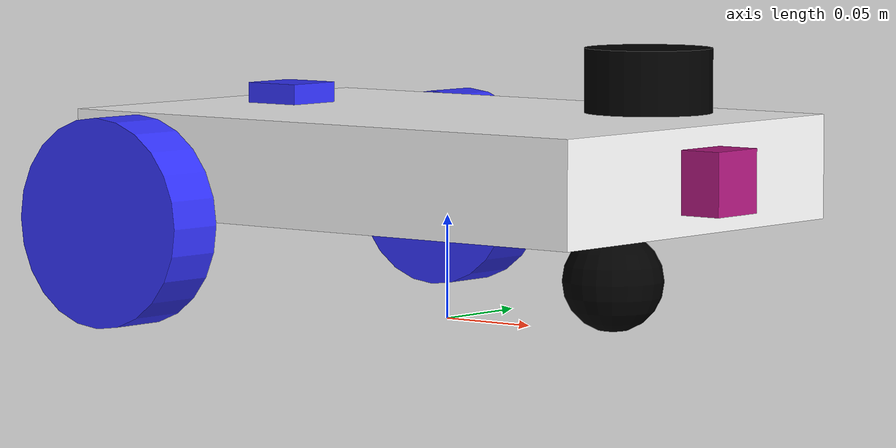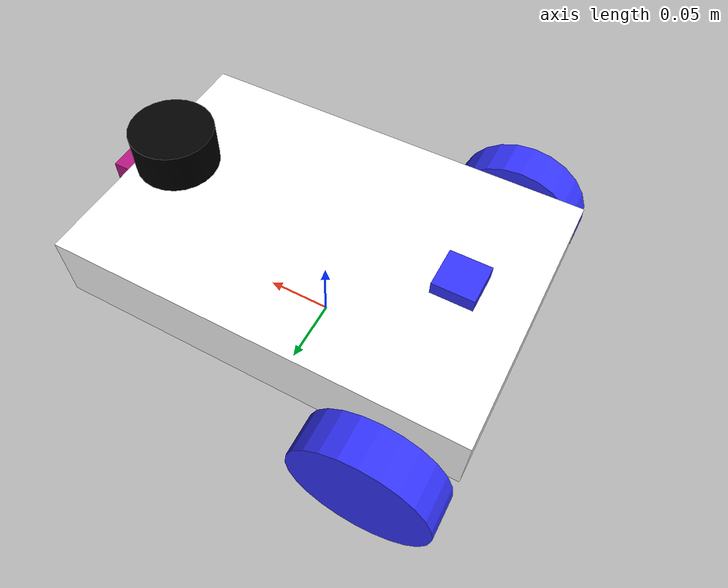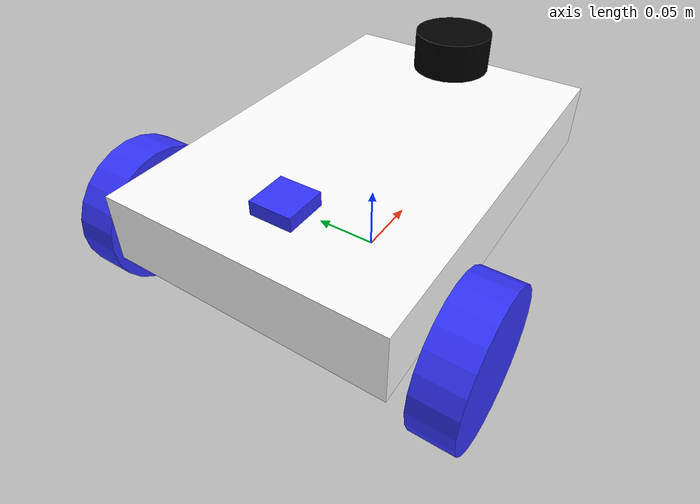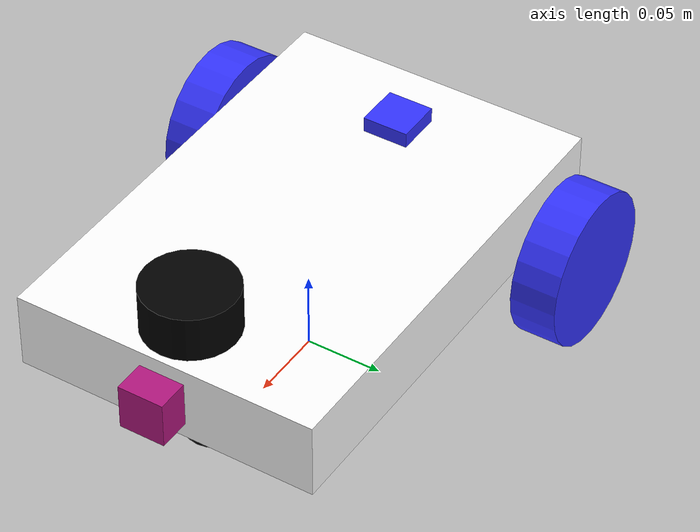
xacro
<?xml version="1.0"?>
<robot xmlns:xacro="http://www.ros.org/wiki/xacro" name="bot">

    <xacro:arg name="use_ros2_control" default="true"/>
    <xacro:arg name="sim_mode" default="true"/>

    <xacro:if value="$(arg use_ros2_control)">
        <xacro:include filename="ros2_control.xacro"/>
    </xacro:if>
    <xacro:unless value="$(arg use_ros2_control)">
        <xacro:include filename="gazebo_control.xacro"/>
    </xacro:unless>
    <xacro:include filename="robot_core.xacro" />
    <xacro:include filename="lidar.xacro"/>
    <xacro:include filename="camera.xacro"/>
    <xacro:include filename="imu.xacro"/>

</robot>

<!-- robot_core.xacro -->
<robot xmlns:xacro="http://www.ros.org/wiki/xacro">

    <material name="white">
        <color rgba="1 1 1 1" />
    </material>

    <material name="red">
        <color rgba="1 0 0 1" />
    </material>

    <material name="orange">
        <color rgba="1 0.3 0.1 1" />
    </material>

    <material name="blue">
        <color rgba="0.2 0.2 1 1" />
    </material>

    <material name="black">
        <color rgba="0 0 0 1" />
    </material>

    <material name="pink">
        <color rgba="0.7 0.09 0.5 1" />
    </material>

    <xacro:property name="box_x" value="0.3"/>
    <xacro:property name="box_y" value="0.2"/>
    <xacro:property name="box_z" value="0.05"/>

    <xacro:property name="wheel_radius" value="0.05"/>
    <xacro:property name="wheel_length" value="0.03"/>

    <xacro:property name="caster_wheel_radius" value="0.025"/>

    <xacro:property name="box_mass" value="0.5"/>
    <xacro:property name="wheel_mass" value="0.1"/>
    <xacro:property name="caster_wheel_mass" value="0.05"/>

    <xacro:property name="lidar_radius" value="0.03"/>
    <xacro:property name="lidar_length" value="0.03"/>

    <link name="base_link">
    </link>

    <link name="base_footprint">
    </link>

    <joint name="base_footprint_joint" type="fixed">
        <parent link="base_link" />
        <child link="base_footprint" />
        <origin xyz="0 0 0" rpy="0 0 0" />

    </joint>

    <link name="chassis">
        <visual>
            <origin xyz="0 0 0"/>
            <geometry>
                <box size="${box_x} ${box_y} ${box_z}"/>
            </geometry>
            <material name="white"/>
        </visual>
        <collision>
            <origin xyz="0 0 0"/>
            <geometry>
                <box size="${box_x-0.001} ${box_y-0.001} ${box_z-0.001}"/>
            </geometry>
        </collision>
        <inertial>
            <origin xyz="0 0 0" rpy="0 0 0" />
            <mass value="${box_mass}" />
            <inertia ixx="${(1/12)*box_mass*(box_y*box_y+box_z*box_z)}" ixy="0" ixz="0" iyy="${(1/12)*box_mass*(box_x*box_x+box_z*box_z)}" iyz="0"
            izz="${(1/12)*box_mass*(box_x*box_x+box_y*box_y)}" />
        </inertial>
    </link>

    <gazebo reference="chassis">
        <visual>
            <material>
                <ambient>1.0 1.0 1.0 1.0</ambient>
                <diffuse>1.0 1.0 1.0 1.0</diffuse>
                <specular>1.0 1.0 1.0 1.0</specular>
            </material>
        </visual>
    </gazebo>

    <joint name="chassis_joint" type="fixed">
        <parent link="base_link"/>
        <child link="chassis"/>
        <origin xyz="0 0 ${wheel_radius+box_z/2}"/>
    </joint>

    <link name="left_wheel">
        <visual>
            <origin xyz="0 0 0" rpy="${pi/2} 0 0"/>
            <geometry>
                <cylinder radius="${wheel_radius}" length="${wheel_length}" />
            </geometry>
            <material name='blue'/>
        </visual>
        <collision>
            <origin xyz="0 0 0" rpy="${pi/2} 0 0"/>
            <geometry>
                <cylinder radius="${wheel_radius}" length="${wheel_length-0.001}" />
            </geometry>
        </collision>
        <inertial>
            <origin xyz="0 0 0" rpy="${pi/2} 0 0" />
            <mass value="${wheel_mass}" />
            <inertia ixx="${(1/12)*wheel_mass*(3*wheel_radius*wheel_radius+wheel_length*wheel_length)}" ixy="0" ixz="0" iyy="${(1/12)*wheel_mass*(3*wheel_radius*wheel_radius+wheel_length*wheel_length)}" iyz="0"
            izz="${(1/2)*wheel_mass*(wheel_radius*wheel_radius)}" />
        </inertial>
    </link>
    <gazebo reference="left_wheel">
    <visual>
        <material>
            <ambient>0.0 0.0 1.0 1.0</ambient>
            <diffuse>0.0 0.0 1.0 1.0</diffuse>
            <specular>0.0 0.0 1.0 1.0</specular>
        </material>
    </visual>
    </gazebo>

    <joint name="left_wheel_joint" type="continuous">
        <parent link="base_link"/>
        <child link="left_wheel"/>
        <origin xyz="${-box_x/2+wheel_radius} ${box_y/2+wheel_length/2+0.01} ${wheel_radius}" rpy="0 0 0"/>
        <axis xyz="0 1 0" />
    </joint>

    <link name="right_wheel">
        <visual>
            <origin xyz="0 0 0" rpy="${pi/2} 0 0"/>
            <geometry>
                <cylinder radius="${wheel_radius}" length="${wheel_length-0.001}" />
            </geometry>
            <material name='blue'/>
        </visual>
        <collision>
            <origin xyz="0 0 0" rpy="${pi/2} 0 0"/>
            <geometry>
                <cylinder radius="${wheel_radius}" length="${wheel_length}" />
            </geometry>
        </collision>
        <inertial>
            <origin xyz="0 0 0" rpy="${pi/2} 0 0" />
            <mass value="${wheel_mass}" />
            <inertia ixx="${(1/12)*wheel_mass*(3*wheel_radius*wheel_radius+wheel_length*wheel_length)}" ixy="0" ixz="0" iyy="${(1/12)*wheel_mass*(3*wheel_radius*wheel_radius+wheel_length*wheel_length)}" iyz="0"
            izz="${(1/2)*wheel_mass*(wheel_radius*wheel_radius)}" />
        </inertial>

    </link>
    <gazebo reference="right_wheel">
    <visual>
        <material>
            <ambient>0.0 0.0 1.0 1.0</ambient>
            <diffuse>0.0 0.0 1.0 1.0</diffuse>
            <specular>0.0 0.0 1.0 1.0</specular>
        </material>
    </visual>
    </gazebo>

    <joint name="right_wheel_joint" type="continuous">
        <parent link="base_link"/>
        <child link="right_wheel"/>
        <origin xyz="${-box_x/2+wheel_radius} ${-box_y/2-wheel_length/2-0.01} ${wheel_radius}" rpy="0 0 0"/>
        <axis xyz="0 1 0" />
    </joint>

    <link name="caster_wheel">
        <visual>
            <geometry>
                <sphere radius="${caster_wheel_radius-0.001}" />
            </geometry>
            <origin xyz="0 0 ${-caster_wheel_radius}" />
            <material name="black"/>
        </visual>
        <collision>
            <geometry>
                <sphere radius="${caster_wheel_radius}" />
            </geometry>
            <origin xyz="0 0 ${-caster_wheel_radius}" />
        </collision>
        <inertial>
            <origin xyz="0 0 ${-caster_wheel_radius}" rpy="0 0 0" />
            <mass value="${caster_wheel_mass}" />
            <inertia ixx="${(2/5)*caster_wheel_mass*(caster_wheel_radius*caster_wheel_radius)}" ixy="0" ixz="0" iyy="${(2/5)*caster_wheel_mass*(caster_wheel_radius*caster_wheel_radius)}" iyz="0"
            izz="${(2/5)*caster_wheel_mass*(caster_wheel_radius*caster_wheel_radius)}" />
        </inertial>
    </link>
    <gazebo reference="caster_wheel">
        <mu1 value="0.001"/>
        <mu2 value="0.001"/>
    </gazebo>

    <joint name="caster_wheel_joint" type="fixed">
        <parent link="base_link"/>
        <child link="caster_wheel"/>
        <origin xyz="${box_x/2-box_x/6} 0 ${wheel_radius}" rpy="0 0 0" />
    </joint>

</robot>

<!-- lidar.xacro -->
<robot xmlns:xacro="http://www.ros.org/wiki/xacro" >

    <joint name="lidar_joint" type="fixed">
        <parent link="chassis"/>
        <child link="laser_frame"/>
        <origin xyz="${box_x/2-lidar_radius} 0 0.045" rpy="0 0 0"/>

    </joint>

    <link name="laser_frame">
        <visual>
            <geometry>
                <cylinder radius="${lidar_radius}" length="${lidar_length}"/>
            </geometry>
            <material name="black"/>
        </visual>
        <collision>
            <geometry>
                <cylinder radius="${lidar_radius}" length="${lidar_length/2}"/>
            </geometry>
        </collision>
        <inertial>
            <mass value="0.1" />
            <origin xyz="0 0 0" rpy="0 0 0"/>
            <inertia ixx="0.0001" ixy="0.0" ixz="0.0"
                     iyy="0.0001" iyz="0.0"
                     izz="0.0001" />
        </inertial>
    </link>
<gazebo reference="laser_frame">
    <sensor name="laser" type="ray"> <!-- Use 'ray' (or 'gpu_ray' if you have drivers set up) -->
        <pose> 0 0 0 0 0 0 </pose>
        <visualize>true</visualize>
        <update_rate>10</update_rate>
        <ray>
            <scan>
                <horizontal>
                    <samples>360</samples>
                    <min_angle>-3.14159</min_angle>
                    <max_angle>3.14159</max_angle>
                </horizontal>
            </scan>
            <range>
                <min>0.12</min>
                <max>12.0</max>
                <resolution>0.01</resolution>
            </range>
        </ray>
        <plugin name="laser_controller" filename="libgazebo_ros_ray_sensor.so">
            <ros>
                <remapping>~/out:=scan</remapping>
            </ros>
            <output_type>sensor_msgs/LaserScan</output_type>
            <frame_name>laser_frame</frame_name>
        </plugin>
    </sensor>
</gazebo>

</robot>

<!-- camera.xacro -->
<robot xmlns:xacro="http://www.ros.org/wiki/xacro" >

    <joint name="camera_joint" type="fixed">
        <parent link="chassis"/>
        <child link="camera_link"/>
        <origin xyz="${box_x/2+lidar_length*0.7/2} 0 0" rpy="0 0 0"/>
    </joint>

    <link name="camera_link">
        <visual>
            <geometry>
                <box size="${lidar_length*0.7} 0.03 0.03"/>
            </geometry>
            <material name="pink"/>
            <origin xyz="0 0 0" rpy="0 0 0"/>
        </visual>
        <collision>
            <geometry>
                <box size="${lidar_length*0.7} 0.03 0.03"/>
            </geometry>
            <material name="pink"/>
            <origin xyz="0 0 0" rpy="0 0 0"/>
        </collision>
        <inertial>
            <mass value="0.1" />
            <origin xyz="0 0 0" rpy="0 0 0"/>
            <inertia ixx="0.0001" ixy="0.0" ixz="0.0"
                     iyy="0.0001" iyz="0.0"
                     izz="0.0001" />
        </inertial>

    </link>

     <joint name="camera_optical_joint" type="fixed">
        <parent link="camera_link"/>
        <child link="camera_link_optical"/>
        <origin xyz="0 0 0" rpy="${-pi/2} 0 ${-pi/2}"/>
    </joint>

    <link name="camera_link_optical">
    </link>

<gazebo reference="camera_link">
    <sensor name="camera" type="camera">
        <pose> 0 0 0 0 0 0 </pose>
        <visualize>true</visualize>
        <update_rate>10</update_rate>
        <camera>
            <horizontal_fov>1.089</horizontal_fov>
            <image>
                <format>R8G8B8</format>
                <width>640</width>
                <height>480</height>
            </image>
            <clip>
                <near>0.05</near>
                <far>8.0</far>
            </clip>
        </camera>
        <plugin name="camera_controller" filename="libgazebo_ros_camera.so">
            <ros>
                <namespace>/</namespace>
                <!-- These remap the internal Gazebo names to standard ROS topics -->
                <remapping>image_raw:=image_raw</remapping>
                <remapping>camera_info:=camera_info</remapping>
            </ros>
            <frame_name>camera_link_optical</frame_name>
        </plugin>
    </sensor>
</gazebo>

</robot>

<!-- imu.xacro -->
<robot xmlns:xacro="http://www.ros.org/wiki/xacro" >

    <xacro:property name="imu_x" value="0.03"/>
    <xacro:property name="imu_y" value="0.03"/>
    <xacro:property name="imu_z" value="0.01"/>

    <joint name="imu_joint" type="fixed">
        <parent link="chassis"/>
        <child link="imu_link"/>
        <origin xyz="${-box_x/2+wheel_radius} 0 ${box_z/2 + imu_z/2}" rpy="0 0 0"/>
    </joint>

    <link name="imu_link">
        <visual>
            <geometry>
                <box size="${imu_x} ${imu_y} ${imu_z}"/>
            </geometry>
            <material name="blue"/>
            <origin xyz="0 0 0" rpy="0 0 0"/>
        </visual>
        <inertial>
            <mass value="0.1" />
            <origin xyz="0 0 0" rpy="0 0 0"/>
            <inertia ixx="0.0001" ixy="0.0" ixz="0.0"
                     iyy="0.0001" iyz="0.0"
                     izz="0.0001" />
        </inertial>

    </link>

<gazebo reference="imu_link">
    <sensor name="imu_sensor" type="imu">
        <always_on>true</always_on>
        <update_rate>100</update_rate>
        <visualize>true</visualize>
        <topic>imu</topic>
        <!-- Add this plugin block -->
        <plugin name="imu_plugin" filename="libgazebo_ros_imu_sensor.so">
            <ros>
                <namespace>/</namespace>
                <remapping>~/out:=imu</remapping>
            </ros>
            <initial_orientation_as_reference>false</initial_orientation_as_reference>
        </plugin>
    </sensor>
</gazebo>

</robot>
